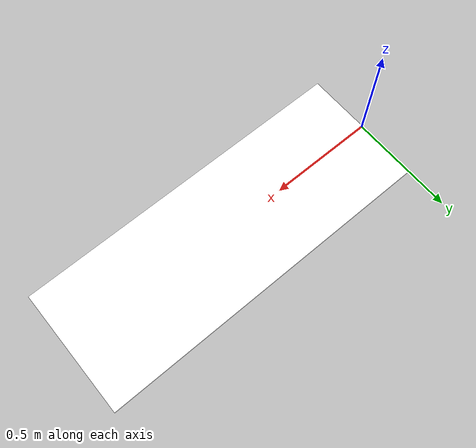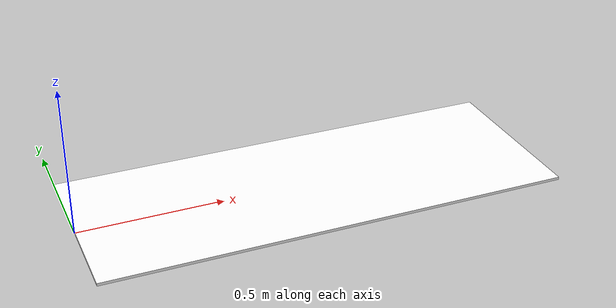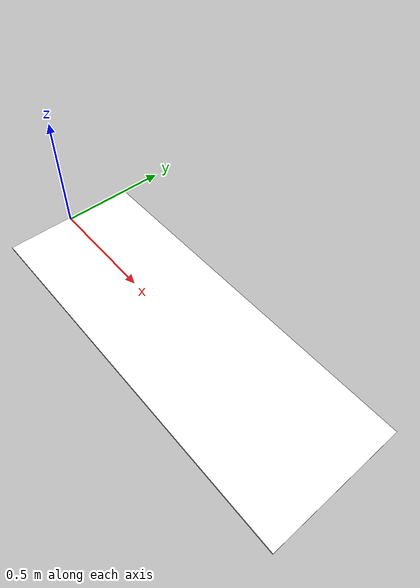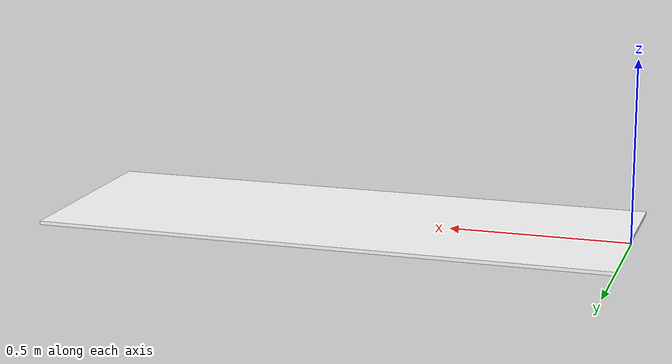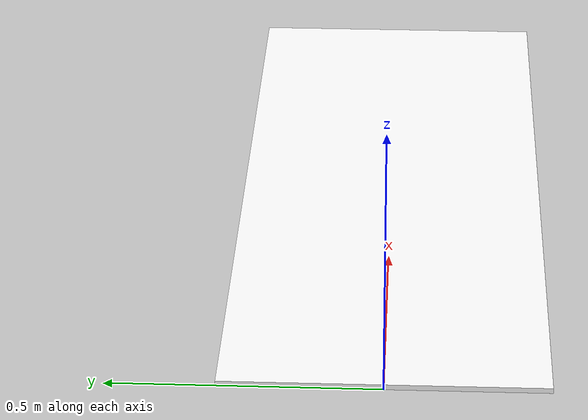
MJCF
<mujoco model="wood_board">
    <compiler angle="radian" coordinate="local" />

    <default>
        <geom contype="1" conaffinity="1" friction="0.8 0.8 0.8" />
    </default>

    <asset>
        <material name="white" rgba="1 1 1 1" />
    </asset>

    <worldbody>
        <body name="wood_board" pos="0 0 0">
            <freejoint name="wood_board_root"/>
            <geom type="box" size="0.8 0.3 0.005" pos="0.8 0 0.005" material="white" mass="2.0"/>
        </body>
    </worldbody>

    <sensor>
        <framepos name="wood_board_pos" objtype="xbody" objname="wood_board" />
        <framequat name="wood_board_quat" objtype="xbody" objname="wood_board" />
    </sensor>
</mujoco>
